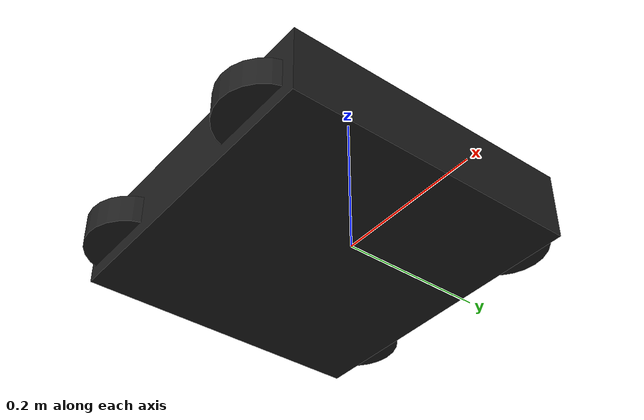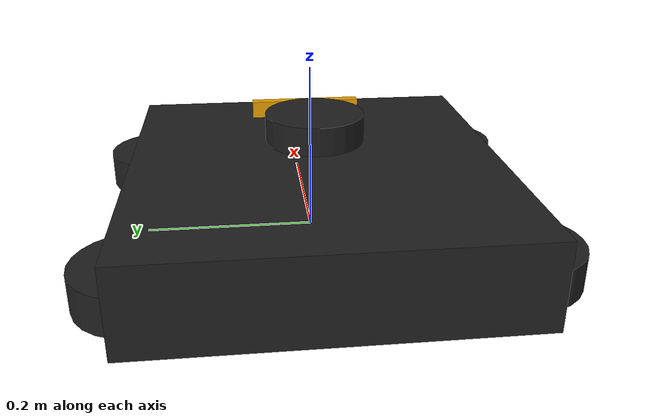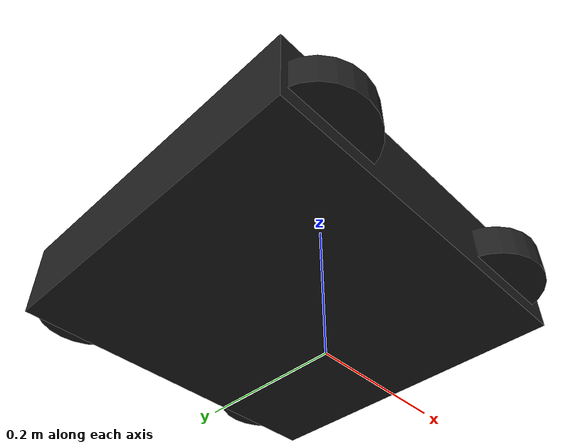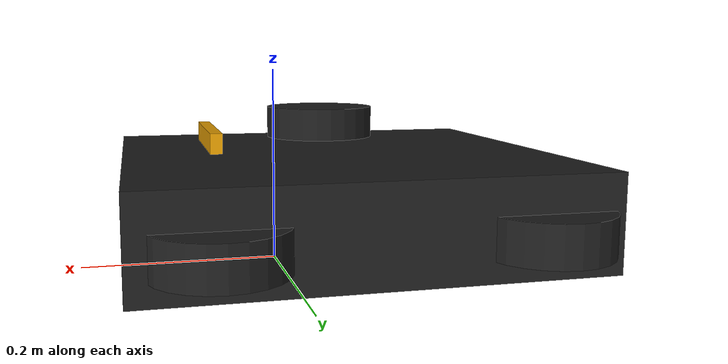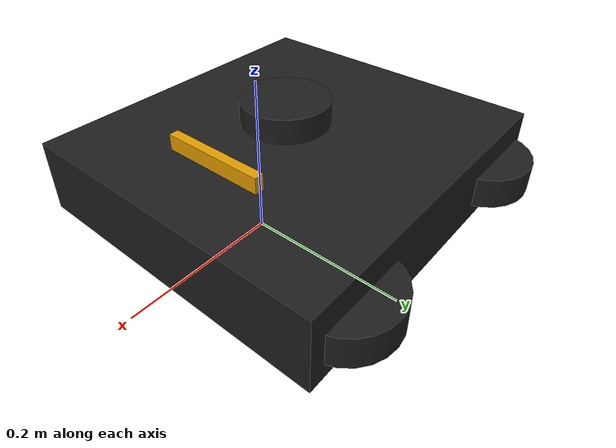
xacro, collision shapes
<?xml version="1.0" ?>
<robot name="turtlebot3_waffle" xmlns:xacro="http://ros.org/wiki/xacro">
  <xacro:include filename="$(find turtlebot3_description)/urdf/common_properties.xacro"/>
  <xacro:include filename="$(find turtlebot3_description)/urdf/turtlebot3_waffle.gazebo.xacro"/>

  <xacro:property name="r200_cam_rgb_px" value="0.005"/>
  <xacro:property name="r200_cam_rgb_py" value="0.018"/>
  <xacro:property name="r200_cam_rgb_pz" value="0.013"/>
  <xacro:property name="r200_cam_depth_offset" value="0.01"/>

  <link name="base_footprint"/>

  <joint name="base_joint" type="fixed">
    <parent link="base_footprint"/>
    <child link="base_link" />
    <origin xyz="0 0 0.03" rpy="0 0 0"/>
  </joint>

  <link name="base_link">
    <visual>
      <origin xyz="-0.064 0 0.035" rpy="0 0 0"/>
      <geometry>
        <mesh filename="package://turtlebot3_description/meshes/bases/waffle_base.stl"
          scale="0.001437908496 0.001067615658 0.000673758865"/>
      </geometry>
      <material name="light_black"/>
    </visual>

    <collision>
      <origin xyz="-0.064 0 0.035" rpy="0 0 0"/>
      <geometry>
        <box size="0.44 0.41 0.095"/>
      </geometry>
    </collision>

    <inertial>
      <origin xyz="0 0 0" rpy="0 0 0"/>
      <mass value="1.3729096"/>
      <inertia ixx="0.0087002718" ixy="-0.000047576583" ixz="0.00011160499"
               iyy="0.0086195418" iyz="-0.0000035422299"
               izz="0.014612727"/>
    </inertial>
  </link>

  <joint name="wheel_left_joint" type="continuous">
    <parent link="base_link"/>
    <child link="wheel_left_link"/>
    <origin xyz="0.078 0.184 0.0275" rpy="-1.57 0 0"/>
    <axis xyz="0 0 1"/>
  </joint>

  <link name="wheel_left_link">
    <visual>
      <origin xyz="0 0 0" rpy="1.57 0 0"/>
      <geometry>
        <mesh filename="package://turtlebot3_description/meshes/wheels/left_tire.stl" scale="0.0015625 0.0015625 0.0015625"/>
      </geometry>
      <material name="dark"/>
    </visual>

    <collision>
      <origin xyz="0 0 0" rpy="1.57 0 0"/>
      <geometry>
        <cylinder length="0.04" radius="0.0625"/>
      </geometry>
    </collision>

    <inertial>
      <origin xyz="0 0 0"/>
      <mass value="0.02849894"/>
      <inertia ixx="0.00001117558" ixy="-0.000000000042369783" ixz="-0.0000000059381719"
               iyy="0.000011192413" iyz="-0.0000000014400107"
               izz="0.000020712558"/>
    </inertial>
  </link>

  <joint name="wheel_right_joint" type="continuous">
    <parent link="base_link"/>
    <child link="wheel_right_link"/>
    <origin xyz="0.078 -0.184 0.0275" rpy="-1.57 0 0"/>
    <axis xyz="0 0 1"/>
  </joint>

  <link name="wheel_right_link">
    <visual>
      <origin xyz="0 0 0" rpy="1.57 0 0"/>
      <geometry>
        <mesh filename="package://turtlebot3_description/meshes/wheels/right_tire.stl" scale="0.0015625 0.0015625 0.0015625"/>
      </geometry>
      <material name="dark"/>
    </visual>

    <collision>
      <origin xyz="0 0 0" rpy="1.57 0 0"/>
      <geometry>
        <cylinder length="0.04" radius="0.0625"/>
      </geometry>
    </collision>

    <inertial>
      <origin xyz="0 0 0"/>
      <mass value="0.02849894"/>
      <inertia ixx="0.00001117558" ixy="-0.000000000042369783" ixz="-0.0000000059381719"
               iyy="0.000011192413" iyz="-0.0000000014400107"
               izz="0.000020712558"/>
    </inertial>
  </link>

  <joint name="caster_back_right_joint" type="fixed">
    <parent link="base_link"/>
    <child link="caster_back_right_link"/>
    <origin xyz="-0.217 -0.184 0.0275" rpy="-1.57 0 0"/>
  </joint>

  <link name="caster_back_right_link">
    <visual>
      <origin xyz="0 0 0" rpy="1.57 0 0"/>
      <geometry>
        <mesh filename="package://turtlebot3_description/meshes/wheels/right_tire.stl" scale="0.0015625 0.0015625 0.0015625"/>
      </geometry>
      <material name="dark"/>
    </visual>

    <collision>
      <origin xyz="0 0 0" rpy="1.57 0 0"/>
      <geometry>
        <cylinder length="0.04" radius="0.0625"/>
      </geometry>
    </collision>

    <inertial>
      <origin xyz="0 0 0"/>
      <mass value="0.02849894"/>
      <inertia ixx="0.00001117558" ixy="-0.000000000042369783" ixz="-0.0000000059381719"
               iyy="0.000011192413" iyz="-0.0000000014400107"
               izz="0.000020712558"/>
    </inertial>
  </link>

  <joint name="caster_back_left_joint" type="fixed">
    <parent link="base_link"/>
    <child link="caster_back_left_link"/>
    <origin xyz="-0.217 0.184 0.0275" rpy="-1.57 0 0"/>
  </joint>

  <link name="caster_back_left_link">
    <visual>
      <origin xyz="0 0 0" rpy="1.57 0 0"/>
      <geometry>
        <mesh filename="package://turtlebot3_description/meshes/wheels/left_tire.stl" scale="0.0015625 0.0015625 0.0015625"/>
      </geometry>
      <material name="dark"/>
    </visual>

    <collision>
      <origin xyz="0 0 0" rpy="1.57 0 0"/>
      <geometry>
        <cylinder length="0.04" radius="0.0625"/>
      </geometry>
    </collision>

    <inertial>
      <origin xyz="0 0 0"/>
      <mass value="0.02849894"/>
      <inertia ixx="0.00001117558" ixy="-0.000000000042369783" ixz="-0.0000000059381719"
               iyy="0.000011192413" iyz="-0.0000000014400107"
               izz="0.000020712558"/>
    </inertial>
  </link>

  <joint name="imu_joint" type="fixed">
    <parent link="base_link"/>
    <child link="imu_link"/>
    <origin xyz="0.0 0 0.068" rpy="0 0 0"/>
  </joint>

  <link name="imu_link"/>

  <joint name="scan_joint" type="fixed">
    <parent link="base_link"/>
    <child link="base_scan"/>d
    <origin xyz="-0.064 0 0.122" rpy="0 0 0"/>
  </joint>

  <link name="base_scan">
    <visual>
      <origin xyz="0 0 0" rpy="0 0 0"/>
      <geometry>
        <mesh filename="package://turtlebot3_description/meshes/sensors/lds.stl" scale="0.001 0.001 0.001"/>
      </geometry>
      <material name="dark"/>
    </visual>

    <collision>
      <origin xyz="0.015 0 -0.0065" rpy="0 0 0"/>
      <geometry>
        <cylinder length="0.0315" radius="0.055"/>
      </geometry>
    </collision>

    <inertial>
      <mass value="0.114"/>
      <origin xyz="0 0 0"/>
      <inertia ixx="0.001" ixy="0.0" ixz="0.0"
               iyy="0.001" iyz="0.0"
               izz="0.001"/>
    </inertial>
  </link>

  <joint name="camera_joint" type="fixed">
    <origin xyz="0.064 -0.065 0.094" rpy="0 0 0"/>
    <parent link="base_link"/>
    <child link="camera_link"/>
  </joint>

  <link name="camera_link">
    <visual>
      <origin xyz="0 0 0" rpy="1.57 0 1.57"/>
      <geometry>
        <mesh filename="package://turtlebot3_description/meshes/sensors/r200.dae"/>
      </geometry>
    </visual>
    <collision>
      <origin xyz="0.003 0.065 0.007" rpy="0 0 0"/>
      <geometry>
        <box size="0.012 0.132 0.020"/>
      </geometry>
    </collision>
  </link>

  <joint name="camera_rgb_joint" type="fixed">
    <origin xyz="${r200_cam_rgb_px} ${r200_cam_rgb_py} ${r200_cam_rgb_pz}" rpy="0 0 0"/>
    <parent link="camera_link"/>
    <child link="camera_rgb_frame"/>
  </joint>
  <link name="camera_rgb_frame"/>

  <joint name="camera_rgb_optical_joint" type="fixed">
    <origin xyz="0 0 0" rpy="-1.57 0 -1.57"/>
    <parent link="camera_rgb_frame"/>
    <child link="camera_rgb_optical_frame"/>
  </joint>
  <link name="camera_rgb_optical_frame"/>

  <joint name="camera_depth_joint" type="fixed">
    <!-- origin 태그의 rpy 속성 값을 올바르게 설정 -->
    <origin xyz="${r200_cam_rgb_px} ${r200_cam_rgb_py + r200_cam_depth_offset} ${r200_cam_rgb_pz}" rpy="0 0 0"/>
    <parent link="camera_link"/>
    <child link="camera_depth_frame"/>
  </joint>
  <link name="camera_depth_frame"/>

  <joint name="camera_depth_optical_joint" type="fixed">
    <origin xyz="0 0 0" rpy="-1.57 0 -1.57"/>
    <parent link="camera_depth_frame"/>
    <child link="camera_depth_optical_frame"/>
  </joint>
  <link name="camera_depth_optical_frame"/>

</robot>
